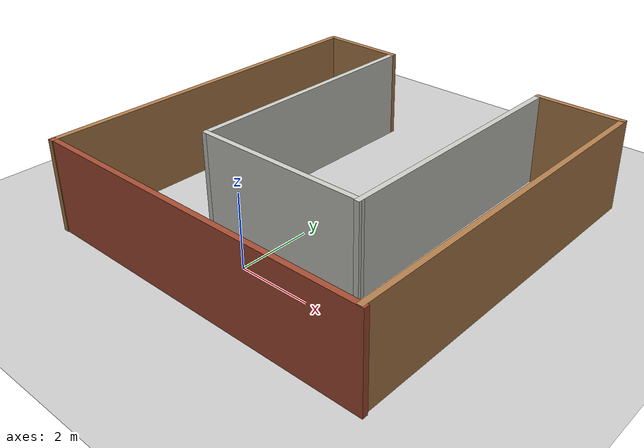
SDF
<sdf version="1.6">
 <world name="default">
  <light name="sun" type="directional">
   <pose>0 0 10 0 -0 0</pose>
   <diffuse>0.8 0.8 0.8 1</diffuse>
   <specular>0.2 0.2 0.2 1</specular>
   <attenuation>
    <range>1000</range>
    <constant>0.9</constant>
    <linear>0.01</linear>
    <quadratic>0.001</quadratic>
   </attenuation>
   <direction>-0.5 0.1 -0.9</direction>
  </light>
  <model name="ground_plane">
   <static>1</static>
   <link name="link">
    <collision name="collision">
     <geometry><plane><normal>0 0 1</normal><size>100 100</size></plane></geometry>
     <surface><friction><ode><mu>100</mu><mu2>50</mu2></ode></friction></surface>
    </collision>
    <visual name="visual">
     <cast_shadows>0</cast_shadows>
     <geometry><plane><normal>0 0 1</normal><size>100 100</size></plane></geometry>
     <material>
      <script><uri>file://media/materials/scripts/gazebo.material</uri><name>Gazebo/Grey</name></script>
     </material>
    </visual>
   </link>
  </model>
  <gravity>0 0 -9.8</gravity>
  <magnetic_field>6e-06 2.3e-05 -4.2e-05</magnetic_field>
  <atmosphere type="adiabatic"/>
  <physics name="default_physics" default="0" type="ode">
   <max_step_size>0.001</max_step_size>
   <real_time_factor>1</real_time_factor>
   <real_time_update_rate>1000</real_time_update_rate>
  </physics>
  <scene><ambient>0.4 0.4 0.4 1</ambient><background>0.7 0.7 0.7 1</background><shadows>1</shadows></scene>
  <spherical_coordinates>
   <surface_model>EARTH_WGS84</surface_model>
   <latitude_deg>0</latitude_deg>
   <longitude_deg>0</longitude_deg>
   <elevation>0</elevation>
   <heading_deg>0</heading_deg>
  </spherical_coordinates>
  <model name="UBuilding">
   <pose>0.297063 3.19969 0 0 -0 0</pose>
   <link name="Wall_11">
    <collision name="Wall_11_Collision">
     <geometry><box><size>7.39326 0.15 2.5</size></box></geometry>
     <pose>0 0 1.25 0 -0 0</pose>
    </collision>
    <visual name="Wall_11_Visual">
     <pose>0 0 1.25 0 -0 0</pose>
     <geometry><box><size>7.39326 0.15 2.5</size></box></geometry>
     <material>
      <script><uri>file://media/materials/scripts/gazebo.material</uri><name>Gazebo/CeilingTiled</name></script>
      <ambient>0 0 1 1</ambient>
     </material>
     <meta><layer>0</layer></meta>
    </visual>
    <pose>2.41297 1.32348 0 0 0 -1.5676</pose>
   </link>
   <link name="Wall_12">
    <collision name="Wall_12_Collision">
     <geometry><box><size>5 0.15 2.5</size></box></geometry>
     <pose>0 0 1.25 0 -0 0</pose>
    </collision>
    <visual name="Wall_12_Visual">
     <pose>0 0 1.25 0 -0 0</pose>
     <geometry><box><size>5 0.15 2.5</size></box></geometry>
     <material>
      <script><uri>file://media/materials/scripts/gazebo.material</uri><name>Gazebo/CeilingTiled</name></script>
      <ambient>0 0 1 1</ambient>
     </material>
     <meta><layer>0</layer></meta>
    </visual>
    <pose>-0.000462 -2.275 0 0 -0 3.14159</pose>
   </link>
   <link name="Wall_14">
    <collision name="Wall_14_Collision">
     <geometry><box><size>7.25 0.15 2.5</size></box></geometry>
     <pose>0 0 1.25 0 -0 0</pose>
    </collision>
    <visual name="Wall_14_Visual">
     <pose>0 0 1.25 0 -0 0</pose>
     <geometry><box><size>7.25 0.15 2.5</size></box></geometry>
     <material>
      <script><uri>file://media/materials/scripts/gazebo.material</uri><name>Gazebo/CeilingTiled</name></script>
      <ambient>0 0 1 1</ambient>
     </material>
     <meta><layer>0</layer></meta>
    </visual>
    <pose>-2.42546 1.275 0 0 -0 1.5708</pose>
   </link>
   <link name="Wall_15">
    <collision name="Wall_15_Collision">
     <geometry><box><size>2.5 0.15 2.5</size></box></geometry>
     <pose>0 0 1.25 0 -0 0</pose>
    </collision>
    <visual name="Wall_15_Visual">
     <pose>0 0 1.25 0 -0 0</pose>
     <geometry><box><size>2.5 0.15 2.5</size></box></geometry>
     <material>
      <script><uri>file://media/materials/scripts/gazebo.material</uri><name>Gazebo/Wood</name></script>
      <ambient>1 1 1 1</ambient>
     </material>
     <meta><layer>0</layer></meta>
    </visual>
    <pose>-3.60046 4.825 0 0 -0 3.14159</pose>
   </link>
   <link name="Wall_18">
    <collision name="Wall_18_Collision">
     <geometry><box><size>9.92017 0.15 2.5</size></box></geometry>
     <pose>0 0 1.25 0 -0 0</pose>
    </collision>
    <visual name="Wall_18_Visual">
     <pose>0 0 1.25 0 -0 0</pose>
     <geometry><box><size>9.92017 0.15 2.5</size></box></geometry>
     <material>
      <script><uri>file://media/materials/scripts/gazebo.material</uri><name>Gazebo/Wood</name></script>
      <ambient>1 1 1 1</ambient>
     </material>
     <meta><layer>0</layer></meta>
    </visual>
    <pose>-4.78768 -0.06007 0 0 0 -1.5733</pose>
   </link>
   <link name="Wall_21">
    <collision name="Wall_21_Collision">
     <geometry><box><size>2.5 0.15 2.5</size></box></geometry>
     <pose>0 0 1.25 0 -0 0</pose>
    </collision>
    <visual name="Wall_21_Visual">
     <pose>0 0 1.25 0 -0 0</pose>
     <geometry><box><size>2.5 0.15 2.5</size></box></geometry>
     <material>
      <script><uri>file://media/materials/scripts/gazebo.material</uri><name>Gazebo/Wood</name></script>
      <ambient>1 1 1 1</ambient>
     </material>
     <meta><layer>0</layer></meta>
    </visual>
    <pose>3.57641 4.94509 0 0 -0 0</pose>
   </link>
   <link name="Wall_22">
    <collision name="Wall_22_Collision">
     <geometry><box><size>10 0.15 2.5</size></box></geometry>
     <pose>0 0 1.25 0 -0 0</pose>
    </collision>
    <visual name="Wall_22_Visual">
     <pose>0 0 1.25 0 -0 0</pose>
     <geometry><box><size>10 0.15 2.5</size></box></geometry>
     <material>
      <script><uri>file://media/materials/scripts/gazebo.material</uri><name>Gazebo/Wood</name></script>
      <ambient>1 1 1 1</ambient>
     </material>
     <meta><layer>0</layer></meta>
    </visual>
    <pose>4.75141 0.020088 0 0 0 -1.5708</pose>
   </link>
   <link name="Wall_8">
    <collision name="Wall_8_Collision">
     <geometry><box><size>9.75 0.15 2.5</size></box></geometry>
     <pose>0 0 1.25 0 -0 0</pose>
    </collision>
    <visual name="Wall_8_Visual">
     <pose>0 0 1.25 0 -0 0</pose>
     <geometry><box><size>9.75 0.15 2.5</size></box></geometry>
     <material>
      <script><uri>file://media/materials/scripts/gazebo.material</uri><name>Gazebo/Bricks</name></script>
      <ambient>1 1 1 1</ambient>
     </material>
     <meta><layer>0</layer></meta>
    </visual>
    <pose>9.4e-05 -4.92503 0 0 -0 0</pose>
   </link>
   <static>1</static>
  </model>
 </world>
</sdf>
